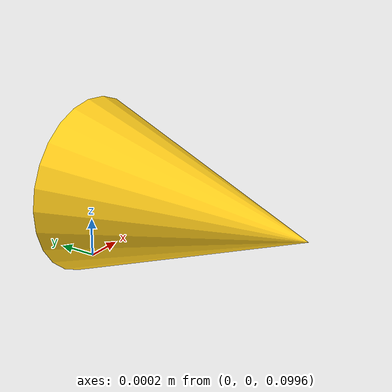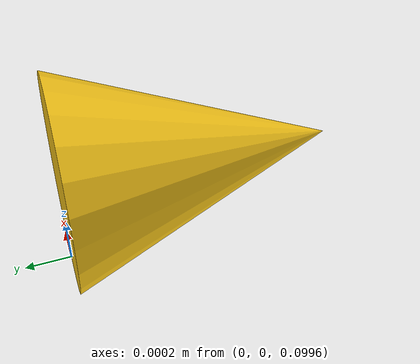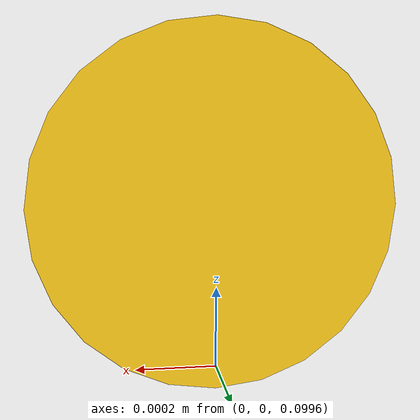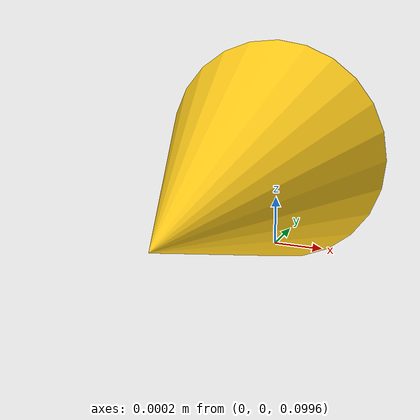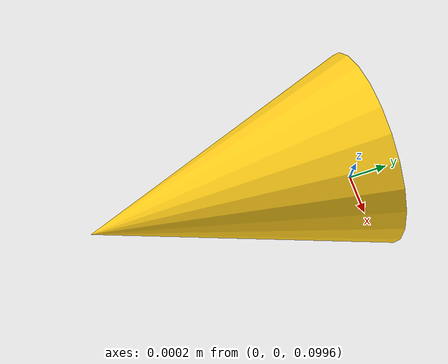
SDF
<?xml version="1.0" ?>
<sdf version="1.6">
  <model name="cone_yellow">
    <pose>0 0 0.1 1.5708 0 0</pose>
    <static>true</static>
    <link name="body">
      <collision name="collision">
        <geometry>
	   <mesh>
             <uri>model://cone_yellow/meshes/cone.stl</uri>
	     <scale>0.004 0.004 0.004</scale>
           </mesh>
         </geometry>
      </collision>

      <visual name="visual">
         <geometry>
           <mesh>
             <uri>model://cone_yellow/meshes/cone.stl</uri>
	     <scale>0.004 0.004 0.004</scale>
           </mesh>
         </geometry>

         <material>
    	  <ambient>1 0.8 0.1 1</ambient>
    	  <diffuse>1 0.8 0.1 1</diffuse>
    	  <specular>0.1 0.1 0.1 1</specular>
    	  <emissive>0 0 0 0</emissive>
  	</material>
       </visual>
    </link>
  </model>
</sdf>
